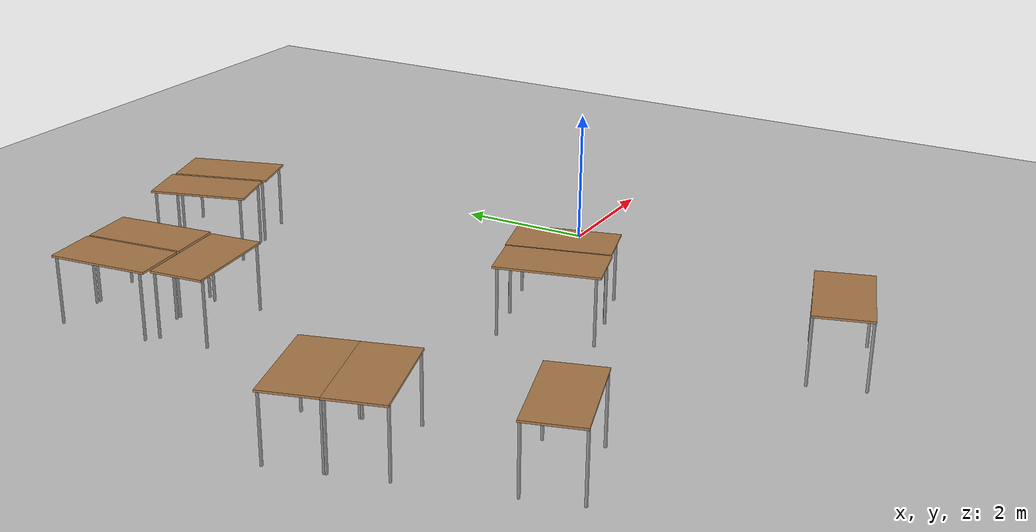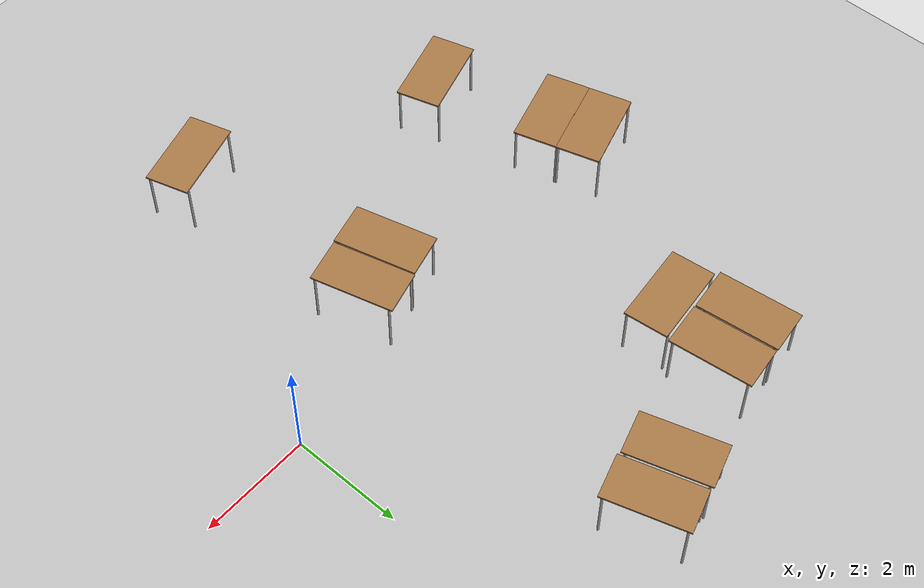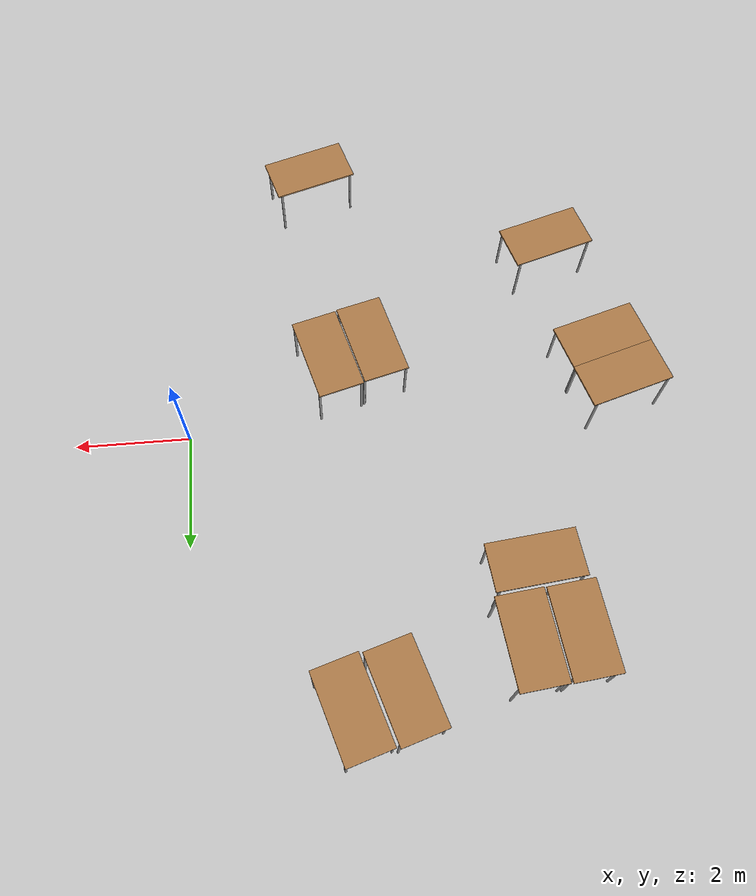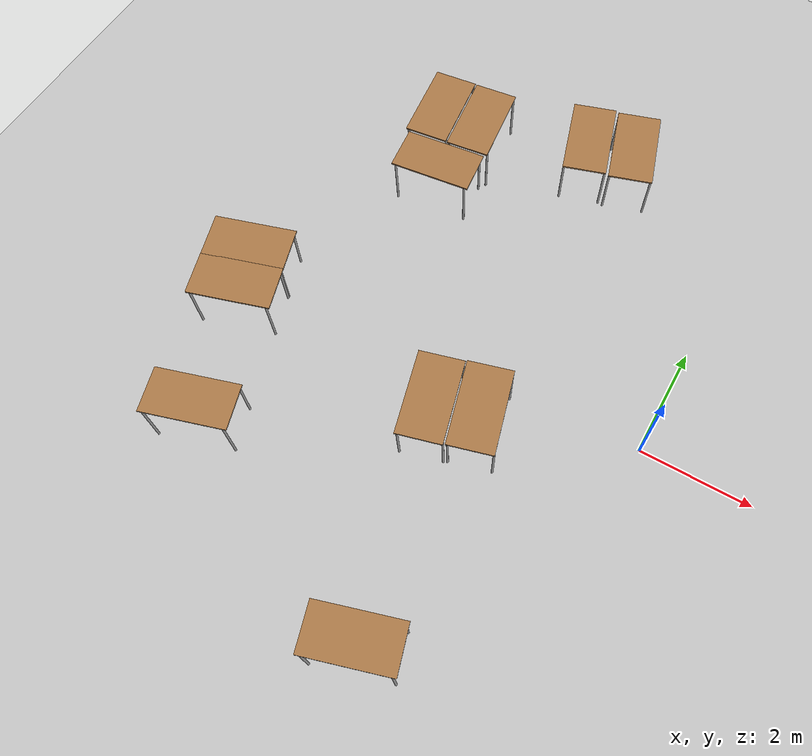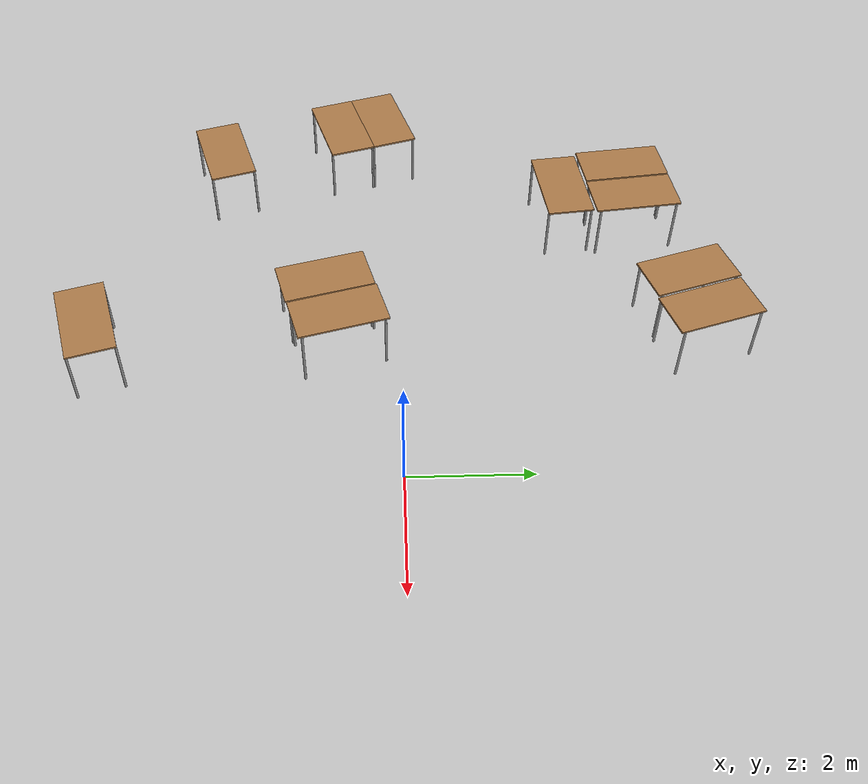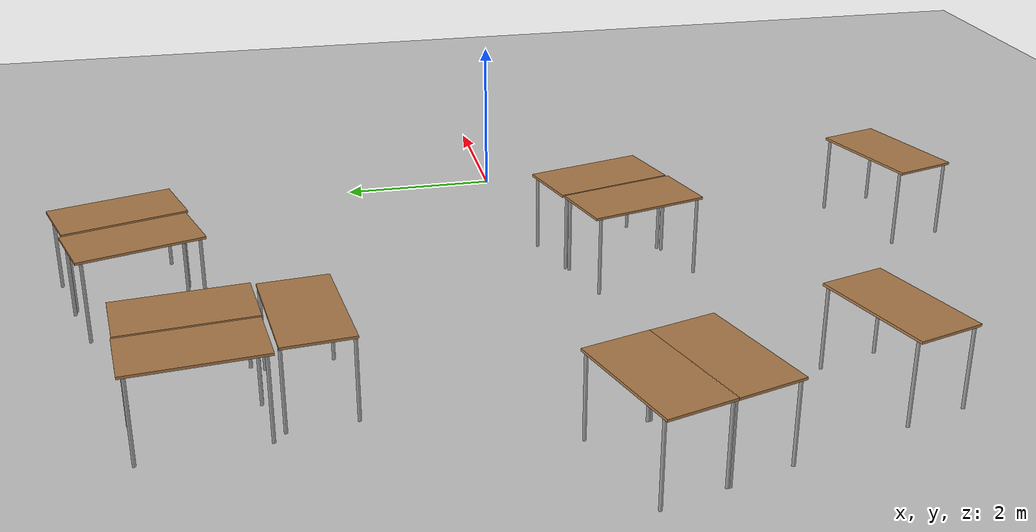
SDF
<sdf version="1.6">
 <world name="default">
  <model name="ground_plane">
   <static>1</static>
   <link name="link">
    <collision name="collision">
     <geometry><plane><normal>0 0 1</normal><size>100 100</size></plane></geometry>
     <surface><friction><ode><mu>100</mu><mu2>50</mu2></ode></friction></surface>
    </collision>
    <visual name="visual">
     <cast_shadows>0</cast_shadows>
     <geometry><plane><normal>0 0 1</normal><size>100 100</size></plane></geometry>
     <material>
      <script><uri>file://media/materials/scripts/gazebo.material</uri><name>Gazebo/Grey</name></script>
     </material>
    </visual>
   </link>
  </model>
  <light name="sun" type="directional">
   <pose>0 0 10 0 -0 0</pose>
   <diffuse>0.8 0.8 0.8 1</diffuse>
   <specular>0.2 0.2 0.2 1</specular>
   <attenuation>
    <range>1000</range>
    <constant>0.9</constant>
    <linear>0.01</linear>
    <quadratic>0.001</quadratic>
   </attenuation>
   <direction>-0.5 0.1 -0.9</direction>
  </light>
  <gravity>0 0 -9.8</gravity>
  <magnetic_field>6e-06 2.3e-05 -4.2e-05</magnetic_field>
  <atmosphere type="adiabatic"/>
  <physics name="default_physics" default="0" type="ode">
   <max_step_size>0.001</max_step_size>
   <real_time_factor>1</real_time_factor>
   <real_time_update_rate>1000</real_time_update_rate>
  </physics>
  <scene><ambient>0.4 0.4 0.4 1</ambient><background>0.7 0.7 0.7 1</background><shadows>1</shadows></scene>
  <audio><device>default</device></audio>
  <spherical_coordinates>
   <surface_model>EARTH_WGS84</surface_model>
   <latitude_deg>0</latitude_deg>
   <longitude_deg>0</longitude_deg>
   <elevation>0</elevation>
   <heading_deg>0</heading_deg>
  </spherical_coordinates>
  <model name="table">
   <static>1</static>
   <link name="link">
    <collision name="surface">
     <pose>0 0 1 0 -0 0</pose>
     <geometry><box><size>1.5 0.8 0.03</size></box></geometry>
     <surface><friction><ode><mu>0.6</mu><mu2>0.6</mu2></ode></friction></surface>
    </collision>
    <visual name="visual1">
     <pose>0 0 1 0 -0 0</pose>
     <geometry><box><size>1.5 0.8 0.03</size></box></geometry>
     <material>
      <script><uri>file://media/materials/scripts/gazebo.material</uri><name>Gazebo/Wood</name></script>
     </material>
    </visual>
    <collision name="front_left_leg">
     <pose>0.68 0.38 0.5 0 -0 0</pose>
     <geometry><cylinder><radius>0.02</radius><length>1</length></cylinder></geometry>
    </collision>
    <visual name="front_left_leg">
     <pose>0.68 0.38 0.5 0 -0 0</pose>
     <geometry><cylinder><radius>0.02</radius><length>1</length></cylinder></geometry>
     <material>
      <script><uri>file://media/materials/scripts/gazebo.material</uri><name>Gazebo/Grey</name></script>
     </material>
    </visual>
    <collision name="front_right_leg">
     <pose>0.68 -0.38 0.5 0 -0 0</pose>
     <geometry><cylinder><radius>0.02</radius><length>1</length></cylinder></geometry>
    </collision>
    <visual name="front_right_leg">
     <pose>0.68 -0.38 0.5 0 -0 0</pose>
     <geometry><cylinder><radius>0.02</radius><length>1</length></cylinder></geometry>
     <material>
      <script><uri>file://media/materials/scripts/gazebo.material</uri><name>Gazebo/Grey</name></script>
     </material>
    </visual>
    <collision name="back_right_leg">
     <pose>-0.68 -0.38 0.5 0 -0 0</pose>
     <geometry><cylinder><radius>0.02</radius><length>1</length></cylinder></geometry>
    </collision>
    <visual name="back_right_leg">
     <pose>-0.68 -0.38 0.5 0 -0 0</pose>
     <geometry><cylinder><radius>0.02</radius><length>1</length></cylinder></geometry>
     <material>
      <script><uri>file://media/materials/scripts/gazebo.material</uri><name>Gazebo/Grey</name></script>
     </material>
    </visual>
    <collision name="back_left_leg">
     <pose>-0.68 0.38 0.5 0 -0 0</pose>
     <geometry><cylinder><radius>0.02</radius><length>1</length></cylinder></geometry>
    </collision>
    <visual name="back_left_leg">
     <pose>-0.68 0.38 0.5 0 -0 0</pose>
     <geometry><cylinder><radius>0.02</radius><length>1</length></cylinder></geometry>
     <material>
      <script><uri>file://media/materials/scripts/gazebo.material</uri><name>Gazebo/Grey</name></script>
     </material>
    </visual>
   </link>
   <pose>-7.55875 -0.230435 -0 0 -0 0.292151</pose>
  </model>
  <model name="table_clone">
   <static>1</static>
   <link name="link">
    <collision name="surface">
     <pose>0 0 1 0 -0 0</pose>
     <geometry><box><size>1.5 0.8 0.03</size></box></geometry>
     <surface><friction><ode><mu>0.6</mu><mu2>0.6</mu2></ode></friction></surface>
    </collision>
    <visual name="visual1">
     <pose>0 0 1 0 -0 0</pose>
     <geometry><box><size>1.5 0.8 0.03</size></box></geometry>
     <material>
      <script><uri>file://media/materials/scripts/gazebo.material</uri><name>Gazebo/Wood</name></script>
     </material>
    </visual>
    <collision name="front_left_leg">
     <pose>0.68 0.38 0.5 0 -0 0</pose>
     <geometry><cylinder><radius>0.02</radius><length>1</length></cylinder></geometry>
    </collision>
    <visual name="front_left_leg">
     <pose>0.68 0.38 0.5 0 -0 0</pose>
     <geometry><cylinder><radius>0.02</radius><length>1</length></cylinder></geometry>
     <material>
      <script><uri>file://media/materials/scripts/gazebo.material</uri><name>Gazebo/Grey</name></script>
     </material>
    </visual>
    <collision name="front_right_leg">
     <pose>0.68 -0.38 0.5 0 -0 0</pose>
     <geometry><cylinder><radius>0.02</radius><length>1</length></cylinder></geometry>
    </collision>
    <visual name="front_right_leg">
     <pose>0.68 -0.38 0.5 0 -0 0</pose>
     <geometry><cylinder><radius>0.02</radius><length>1</length></cylinder></geometry>
     <material>
      <script><uri>file://media/materials/scripts/gazebo.material</uri><name>Gazebo/Grey</name></script>
     </material>
    </visual>
    <collision name="back_right_leg">
     <pose>-0.68 -0.38 0.5 0 -0 0</pose>
     <geometry><cylinder><radius>0.02</radius><length>1</length></cylinder></geometry>
    </collision>
    <visual name="back_right_leg">
     <pose>-0.68 -0.38 0.5 0 -0 0</pose>
     <geometry><cylinder><radius>0.02</radius><length>1</length></cylinder></geometry>
     <material>
      <script><uri>file://media/materials/scripts/gazebo.material</uri><name>Gazebo/Grey</name></script>
     </material>
    </visual>
    <collision name="back_left_leg">
     <pose>-0.68 0.38 0.5 0 -0 0</pose>
     <geometry><cylinder><radius>0.02</radius><length>1</length></cylinder></geometry>
    </collision>
    <visual name="back_left_leg">
     <pose>-0.68 0.38 0.5 0 -0 0</pose>
     <geometry><cylinder><radius>0.02</radius><length>1</length></cylinder></geometry>
     <material>
      <script><uri>file://media/materials/scripts/gazebo.material</uri><name>Gazebo/Grey</name></script>
     </material>
    </visual>
   </link>
   <pose>-6.13179 4.09391 0 0 0 -1.45434</pose>
  </model>
  <model name="table_clone_clone">
   <static>1</static>
   <link name="link">
    <collision name="surface">
     <pose>0 0 1 0 -0 0</pose>
     <geometry><box><size>1.5 0.8 0.03</size></box></geometry>
     <surface><friction><ode><mu>0.6</mu><mu2>0.6</mu2></ode></friction></surface>
    </collision>
    <visual name="visual1">
     <pose>0 0 1 0 -0 0</pose>
     <geometry><box><size>1.5 0.8 0.03</size></box></geometry>
     <material>
      <script><uri>file://media/materials/scripts/gazebo.material</uri><name>Gazebo/Wood</name></script>
     </material>
    </visual>
    <collision name="front_left_leg">
     <pose>0.68 0.38 0.5 0 -0 0</pose>
     <geometry><cylinder><radius>0.02</radius><length>1</length></cylinder></geometry>
    </collision>
    <visual name="front_left_leg">
     <pose>0.68 0.38 0.5 0 -0 0</pose>
     <geometry><cylinder><radius>0.02</radius><length>1</length></cylinder></geometry>
     <material>
      <script><uri>file://media/materials/scripts/gazebo.material</uri><name>Gazebo/Grey</name></script>
     </material>
    </visual>
    <collision name="front_right_leg">
     <pose>0.68 -0.38 0.5 0 -0 0</pose>
     <geometry><cylinder><radius>0.02</radius><length>1</length></cylinder></geometry>
    </collision>
    <visual name="front_right_leg">
     <pose>0.68 -0.38 0.5 0 -0 0</pose>
     <geometry><cylinder><radius>0.02</radius><length>1</length></cylinder></geometry>
     <material>
      <script><uri>file://media/materials/scripts/gazebo.material</uri><name>Gazebo/Grey</name></script>
     </material>
    </visual>
    <collision name="back_right_leg">
     <pose>-0.68 -0.38 0.5 0 -0 0</pose>
     <geometry><cylinder><radius>0.02</radius><length>1</length></cylinder></geometry>
    </collision>
    <visual name="back_right_leg">
     <pose>-0.68 -0.38 0.5 0 -0 0</pose>
     <geometry><cylinder><radius>0.02</radius><length>1</length></cylinder></geometry>
     <material>
      <script><uri>file://media/materials/scripts/gazebo.material</uri><name>Gazebo/Grey</name></script>
     </material>
    </visual>
    <collision name="back_left_leg">
     <pose>-0.68 0.38 0.5 0 -0 0</pose>
     <geometry><cylinder><radius>0.02</radius><length>1</length></cylinder></geometry>
    </collision>
    <visual name="back_left_leg">
     <pose>-0.68 0.38 0.5 0 -0 0</pose>
     <geometry><cylinder><radius>0.02</radius><length>1</length></cylinder></geometry>
     <material>
      <script><uri>file://media/materials/scripts/gazebo.material</uri><name>Gazebo/Grey</name></script>
     </material>
    </visual>
   </link>
   <pose>-5.30288 4.18149 0 0 0 -1.45434</pose>
  </model>
  <model name="table_clone_clone_clone">
   <static>1</static>
   <link name="link">
    <collision name="surface">
     <pose>0 0 1 0 -0 0</pose>
     <geometry><box><size>1.5 0.8 0.03</size></box></geometry>
     <surface><friction><ode><mu>0.6</mu><mu2>0.6</mu2></ode></friction></surface>
    </collision>
    <visual name="visual1">
     <pose>0 0 1 0 -0 0</pose>
     <geometry><box><size>1.5 0.8 0.03</size></box></geometry>
     <material>
      <script><uri>file://media/materials/scripts/gazebo.material</uri><name>Gazebo/Wood</name></script>
     </material>
    </visual>
    <collision name="front_left_leg">
     <pose>0.68 0.38 0.5 0 -0 0</pose>
     <geometry><cylinder><radius>0.02</radius><length>1</length></cylinder></geometry>
    </collision>
    <visual name="front_left_leg">
     <pose>0.68 0.38 0.5 0 -0 0</pose>
     <geometry><cylinder><radius>0.02</radius><length>1</length></cylinder></geometry>
     <material>
      <script><uri>file://media/materials/scripts/gazebo.material</uri><name>Gazebo/Grey</name></script>
     </material>
    </visual>
    <collision name="front_right_leg">
     <pose>0.68 -0.38 0.5 0 -0 0</pose>
     <geometry><cylinder><radius>0.02</radius><length>1</length></cylinder></geometry>
    </collision>
    <visual name="front_right_leg">
     <pose>0.68 -0.38 0.5 0 -0 0</pose>
     <geometry><cylinder><radius>0.02</radius><length>1</length></cylinder></geometry>
     <material>
      <script><uri>file://media/materials/scripts/gazebo.material</uri><name>Gazebo/Grey</name></script>
     </material>
    </visual>
    <collision name="back_right_leg">
     <pose>-0.68 -0.38 0.5 0 -0 0</pose>
     <geometry><cylinder><radius>0.02</radius><length>1</length></cylinder></geometry>
    </collision>
    <visual name="back_right_leg">
     <pose>-0.68 -0.38 0.5 0 -0 0</pose>
     <geometry><cylinder><radius>0.02</radius><length>1</length></cylinder></geometry>
     <material>
      <script><uri>file://media/materials/scripts/gazebo.material</uri><name>Gazebo/Grey</name></script>
     </material>
    </visual>
    <collision name="back_left_leg">
     <pose>-0.68 0.38 0.5 0 -0 0</pose>
     <geometry><cylinder><radius>0.02</radius><length>1</length></cylinder></geometry>
    </collision>
    <visual name="back_left_leg">
     <pose>-0.68 0.38 0.5 0 -0 0</pose>
     <geometry><cylinder><radius>0.02</radius><length>1</length></cylinder></geometry>
     <material>
      <script><uri>file://media/materials/scripts/gazebo.material</uri><name>Gazebo/Grey</name></script>
     </material>
    </visual>
   </link>
   <pose>-3.32836 4.77328 0 0 0 -1.26948</pose>
  </model>
  <model name="table_clone_clone_clone_clone">
   <static>1</static>
   <link name="link">
    <collision name="surface">
     <pose>0 0 1 0 -0 0</pose>
     <geometry><box><size>1.5 0.8 0.03</size></box></geometry>
     <surface><friction><ode><mu>0.6</mu><mu2>0.6</mu2></ode></friction></surface>
    </collision>
    <visual name="visual1">
     <pose>0 0 1 0 -0 0</pose>
     <geometry><box><size>1.5 0.8 0.03</size></box></geometry>
     <material>
      <script><uri>file://media/materials/scripts/gazebo.material</uri><name>Gazebo/Wood</name></script>
     </material>
    </visual>
    <collision name="front_left_leg">
     <pose>0.68 0.38 0.5 0 -0 0</pose>
     <geometry><cylinder><radius>0.02</radius><length>1</length></cylinder></geometry>
    </collision>
    <visual name="front_left_leg">
     <pose>0.68 0.38 0.5 0 -0 0</pose>
     <geometry><cylinder><radius>0.02</radius><length>1</length></cylinder></geometry>
     <material>
      <script><uri>file://media/materials/scripts/gazebo.material</uri><name>Gazebo/Grey</name></script>
     </material>
    </visual>
    <collision name="front_right_leg">
     <pose>0.68 -0.38 0.5 0 -0 0</pose>
     <geometry><cylinder><radius>0.02</radius><length>1</length></cylinder></geometry>
    </collision>
    <visual name="front_right_leg">
     <pose>0.68 -0.38 0.5 0 -0 0</pose>
     <geometry><cylinder><radius>0.02</radius><length>1</length></cylinder></geometry>
     <material>
      <script><uri>file://media/materials/scripts/gazebo.material</uri><name>Gazebo/Grey</name></script>
     </material>
    </visual>
    <collision name="back_right_leg">
     <pose>-0.68 -0.38 0.5 0 -0 0</pose>
     <geometry><cylinder><radius>0.02</radius><length>1</length></cylinder></geometry>
    </collision>
    <visual name="back_right_leg">
     <pose>-0.68 -0.38 0.5 0 -0 0</pose>
     <geometry><cylinder><radius>0.02</radius><length>1</length></cylinder></geometry>
     <material>
      <script><uri>file://media/materials/scripts/gazebo.material</uri><name>Gazebo/Grey</name></script>
     </material>
    </visual>
    <collision name="back_left_leg">
     <pose>-0.68 0.38 0.5 0 -0 0</pose>
     <geometry><cylinder><radius>0.02</radius><length>1</length></cylinder></geometry>
    </collision>
    <visual name="back_left_leg">
     <pose>-0.68 0.38 0.5 0 -0 0</pose>
     <geometry><cylinder><radius>0.02</radius><length>1</length></cylinder></geometry>
     <material>
      <script><uri>file://media/materials/scripts/gazebo.material</uri><name>Gazebo/Grey</name></script>
     </material>
    </visual>
   </link>
   <pose>-2.50531 4.98852 0 0 0 -1.26948</pose>
  </model>
  <model name="table_clone_0">
   <static>1</static>
   <link name="link">
    <collision name="surface">
     <pose>0 0 1 0 -0 0</pose>
     <geometry><box><size>1.5 0.8 0.03</size></box></geometry>
     <surface><friction><ode><mu>0.6</mu><mu2>0.6</mu2></ode></friction></surface>
    </collision>
    <visual name="visual1">
     <pose>0 0 1 0 -0 0</pose>
     <geometry><box><size>1.5 0.8 0.03</size></box></geometry>
     <material>
      <script><uri>file://media/materials/scripts/gazebo.material</uri><name>Gazebo/Wood</name></script>
     </material>
    </visual>
    <collision name="front_left_leg">
     <pose>0.68 0.38 0.5 0 -0 0</pose>
     <geometry><cylinder><radius>0.02</radius><length>1</length></cylinder></geometry>
    </collision>
    <visual name="front_left_leg">
     <pose>0.68 0.38 0.5 0 -0 0</pose>
     <geometry><cylinder><radius>0.02</radius><length>1</length></cylinder></geometry>
     <material>
      <script><uri>file://media/materials/scripts/gazebo.material</uri><name>Gazebo/Grey</name></script>
     </material>
    </visual>
    <collision name="front_right_leg">
     <pose>0.68 -0.38 0.5 0 -0 0</pose>
     <geometry><cylinder><radius>0.02</radius><length>1</length></cylinder></geometry>
    </collision>
    <visual name="front_right_leg">
     <pose>0.68 -0.38 0.5 0 -0 0</pose>
     <geometry><cylinder><radius>0.02</radius><length>1</length></cylinder></geometry>
     <material>
      <script><uri>file://media/materials/scripts/gazebo.material</uri><name>Gazebo/Grey</name></script>
     </material>
    </visual>
    <collision name="back_right_leg">
     <pose>-0.68 -0.38 0.5 0 -0 0</pose>
     <geometry><cylinder><radius>0.02</radius><length>1</length></cylinder></geometry>
    </collision>
    <visual name="back_right_leg">
     <pose>-0.68 -0.38 0.5 0 -0 0</pose>
     <geometry><cylinder><radius>0.02</radius><length>1</length></cylinder></geometry>
     <material>
      <script><uri>file://media/materials/scripts/gazebo.material</uri><name>Gazebo/Grey</name></script>
     </material>
    </visual>
    <collision name="back_left_leg">
     <pose>-0.68 0.38 0.5 0 -0 0</pose>
     <geometry><cylinder><radius>0.02</radius><length>1</length></cylinder></geometry>
    </collision>
    <visual name="back_left_leg">
     <pose>-0.68 0.38 0.5 0 -0 0</pose>
     <geometry><cylinder><radius>0.02</radius><length>1</length></cylinder></geometry>
     <material>
      <script><uri>file://media/materials/scripts/gazebo.material</uri><name>Gazebo/Grey</name></script>
     </material>
    </visual>
   </link>
   <pose>-7.33308 -0.9878 0 0 -0 0.292151</pose>
  </model>
  <model name="table_clone_0_clone">
   <static>1</static>
   <link name="link">
    <collision name="surface">
     <pose>0 0 1 0 -0 0</pose>
     <geometry><box><size>1.5 0.8 0.03</size></box></geometry>
     <surface><friction><ode><mu>0.6</mu><mu2>0.6</mu2></ode></friction></surface>
    </collision>
    <visual name="visual1">
     <pose>0 0 1 0 -0 0</pose>
     <geometry><box><size>1.5 0.8 0.03</size></box></geometry>
     <material>
      <script><uri>file://media/materials/scripts/gazebo.material</uri><name>Gazebo/Wood</name></script>
     </material>
    </visual>
    <collision name="front_left_leg">
     <pose>0.68 0.38 0.5 0 -0 0</pose>
     <geometry><cylinder><radius>0.02</radius><length>1</length></cylinder></geometry>
    </collision>
    <visual name="front_left_leg">
     <pose>0.68 0.38 0.5 0 -0 0</pose>
     <geometry><cylinder><radius>0.02</radius><length>1</length></cylinder></geometry>
     <material>
      <script><uri>file://media/materials/scripts/gazebo.material</uri><name>Gazebo/Grey</name></script>
     </material>
    </visual>
    <collision name="front_right_leg">
     <pose>0.68 -0.38 0.5 0 -0 0</pose>
     <geometry><cylinder><radius>0.02</radius><length>1</length></cylinder></geometry>
    </collision>
    <visual name="front_right_leg">
     <pose>0.68 -0.38 0.5 0 -0 0</pose>
     <geometry><cylinder><radius>0.02</radius><length>1</length></cylinder></geometry>
     <material>
      <script><uri>file://media/materials/scripts/gazebo.material</uri><name>Gazebo/Grey</name></script>
     </material>
    </visual>
    <collision name="back_right_leg">
     <pose>-0.68 -0.38 0.5 0 -0 0</pose>
     <geometry><cylinder><radius>0.02</radius><length>1</length></cylinder></geometry>
    </collision>
    <visual name="back_right_leg">
     <pose>-0.68 -0.38 0.5 0 -0 0</pose>
     <geometry><cylinder><radius>0.02</radius><length>1</length></cylinder></geometry>
     <material>
      <script><uri>file://media/materials/scripts/gazebo.material</uri><name>Gazebo/Grey</name></script>
     </material>
    </visual>
    <collision name="back_left_leg">
     <pose>-0.68 0.38 0.5 0 -0 0</pose>
     <geometry><cylinder><radius>0.02</radius><length>1</length></cylinder></geometry>
    </collision>
    <visual name="back_left_leg">
     <pose>-0.68 0.38 0.5 0 -0 0</pose>
     <geometry><cylinder><radius>0.02</radius><length>1</length></cylinder></geometry>
     <material>
      <script><uri>file://media/materials/scripts/gazebo.material</uri><name>Gazebo/Grey</name></script>
     </material>
    </visual>
   </link>
   <pose>-6.6814 -3.12807 0 0 -0 0.292151</pose>
  </model>
  <model name="table_clone_0_clone_clone">
   <static>1</static>
   <link name="link">
    <collision name="surface">
     <pose>0 0 1 0 -0 0</pose>
     <geometry><box><size>1.5 0.8 0.03</size></box></geometry>
     <surface><friction><ode><mu>0.6</mu><mu2>0.6</mu2></ode></friction></surface>
    </collision>
    <visual name="visual1">
     <pose>0 0 1 0 -0 0</pose>
     <geometry><box><size>1.5 0.8 0.03</size></box></geometry>
     <material>
      <script><uri>file://media/materials/scripts/gazebo.material</uri><name>Gazebo/Wood</name></script>
     </material>
    </visual>
    <collision name="front_left_leg">
     <pose>0.68 0.38 0.5 0 -0 0</pose>
     <geometry><cylinder><radius>0.02</radius><length>1</length></cylinder></geometry>
    </collision>
    <visual name="front_left_leg">
     <pose>0.68 0.38 0.5 0 -0 0</pose>
     <geometry><cylinder><radius>0.02</radius><length>1</length></cylinder></geometry>
     <material>
      <script><uri>file://media/materials/scripts/gazebo.material</uri><name>Gazebo/Grey</name></script>
     </material>
    </visual>
    <collision name="front_right_leg">
     <pose>0.68 -0.38 0.5 0 -0 0</pose>
     <geometry><cylinder><radius>0.02</radius><length>1</length></cylinder></geometry>
    </collision>
    <visual name="front_right_leg">
     <pose>0.68 -0.38 0.5 0 -0 0</pose>
     <geometry><cylinder><radius>0.02</radius><length>1</length></cylinder></geometry>
     <material>
      <script><uri>file://media/materials/scripts/gazebo.material</uri><name>Gazebo/Grey</name></script>
     </material>
    </visual>
    <collision name="back_right_leg">
     <pose>-0.68 -0.38 0.5 0 -0 0</pose>
     <geometry><cylinder><radius>0.02</radius><length>1</length></cylinder></geometry>
    </collision>
    <visual name="back_right_leg">
     <pose>-0.68 -0.38 0.5 0 -0 0</pose>
     <geometry><cylinder><radius>0.02</radius><length>1</length></cylinder></geometry>
     <material>
      <script><uri>file://media/materials/scripts/gazebo.material</uri><name>Gazebo/Grey</name></script>
     </material>
    </visual>
    <collision name="back_left_leg">
     <pose>-0.68 0.38 0.5 0 -0 0</pose>
     <geometry><cylinder><radius>0.02</radius><length>1</length></cylinder></geometry>
    </collision>
    <visual name="back_left_leg">
     <pose>-0.68 0.38 0.5 0 -0 0</pose>
     <geometry><cylinder><radius>0.02</radius><length>1</length></cylinder></geometry>
     <material>
      <script><uri>file://media/materials/scripts/gazebo.material</uri><name>Gazebo/Grey</name></script>
     </material>
    </visual>
   </link>
   <pose>-2.5311 -0.98817 0 0 0 -1.30315</pose>
  </model>
  <model name="table_clone_0_clone_clone_clone">
   <static>1</static>
   <link name="link">
    <collision name="surface">
     <pose>0 0 1 0 -0 0</pose>
     <geometry><box><size>1.5 0.8 0.03</size></box></geometry>
     <surface><friction><ode><mu>0.6</mu><mu2>0.6</mu2></ode></friction></surface>
    </collision>
    <visual name="visual1">
     <pose>0 0 1 0 -0 0</pose>
     <geometry><box><size>1.5 0.8 0.03</size></box></geometry>
     <material>
      <script><uri>file://media/materials/scripts/gazebo.material</uri><name>Gazebo/Wood</name></script>
     </material>
    </visual>
    <collision name="front_left_leg">
     <pose>0.68 0.38 0.5 0 -0 0</pose>
     <geometry><cylinder><radius>0.02</radius><length>1</length></cylinder></geometry>
    </collision>
    <visual name="front_left_leg">
     <pose>0.68 0.38 0.5 0 -0 0</pose>
     <geometry><cylinder><radius>0.02</radius><length>1</length></cylinder></geometry>
     <material>
      <script><uri>file://media/materials/scripts/gazebo.material</uri><name>Gazebo/Grey</name></script>
     </material>
    </visual>
    <collision name="front_right_leg">
     <pose>0.68 -0.38 0.5 0 -0 0</pose>
     <geometry><cylinder><radius>0.02</radius><length>1</length></cylinder></geometry>
    </collision>
    <visual name="front_right_leg">
     <pose>0.68 -0.38 0.5 0 -0 0</pose>
     <geometry><cylinder><radius>0.02</radius><length>1</length></cylinder></geometry>
     <material>
      <script><uri>file://media/materials/scripts/gazebo.material</uri><name>Gazebo/Grey</name></script>
     </material>
    </visual>
    <collision name="back_right_leg">
     <pose>-0.68 -0.38 0.5 0 -0 0</pose>
     <geometry><cylinder><radius>0.02</radius><length>1</length></cylinder></geometry>
    </collision>
    <visual name="back_right_leg">
     <pose>-0.68 -0.38 0.5 0 -0 0</pose>
     <geometry><cylinder><radius>0.02</radius><length>1</length></cylinder></geometry>
     <material>
      <script><uri>file://media/materials/scripts/gazebo.material</uri><name>Gazebo/Grey</name></script>
     </material>
    </visual>
    <collision name="back_left_leg">
     <pose>-0.68 0.38 0.5 0 -0 0</pose>
     <geometry><cylinder><radius>0.02</radius><length>1</length></cylinder></geometry>
    </collision>
    <visual name="back_left_leg">
     <pose>-0.68 0.38 0.5 0 -0 0</pose>
     <geometry><cylinder><radius>0.02</radius><length>1</length></cylinder></geometry>
     <material>
      <script><uri>file://media/materials/scripts/gazebo.material</uri><name>Gazebo/Grey</name></script>
     </material>
    </visual>
   </link>
   <pose>-3.32392 -1.22048 0 0 -0 1.83179</pose>
  </model>
  <model name="table_clone_0_clone_clone_0">
   <static>1</static>
   <link name="link">
    <collision name="surface">
     <pose>0 0 1 0 -0 0</pose>
     <geometry><box><size>1.5 0.8 0.03</size></box></geometry>
     <surface><friction><ode><mu>0.6</mu><mu2>0.6</mu2></ode></friction></surface>
    </collision>
    <visual name="visual1">
     <pose>0 0 1 0 -0 0</pose>
     <geometry><box><size>1.5 0.8 0.03</size></box></geometry>
     <material>
      <script><uri>file://media/materials/scripts/gazebo.material</uri><name>Gazebo/Wood</name></script>
     </material>
    </visual>
    <collision name="front_left_leg">
     <pose>0.68 0.38 0.5 0 -0 0</pose>
     <geometry><cylinder><radius>0.02</radius><length>1</length></cylinder></geometry>
    </collision>
    <visual name="front_left_leg">
     <pose>0.68 0.38 0.5 0 -0 0</pose>
     <geometry><cylinder><radius>0.02</radius><length>1</length></cylinder></geometry>
     <material>
      <script><uri>file://media/materials/scripts/gazebo.material</uri><name>Gazebo/Grey</name></script>
     </material>
    </visual>
    <collision name="front_right_leg">
     <pose>0.68 -0.38 0.5 0 -0 0</pose>
     <geometry><cylinder><radius>0.02</radius><length>1</length></cylinder></geometry>
    </collision>
    <visual name="front_right_leg">
     <pose>0.68 -0.38 0.5 0 -0 0</pose>
     <geometry><cylinder><radius>0.02</radius><length>1</length></cylinder></geometry>
     <material>
      <script><uri>file://media/materials/scripts/gazebo.material</uri><name>Gazebo/Grey</name></script>
     </material>
    </visual>
    <collision name="back_right_leg">
     <pose>-0.68 -0.38 0.5 0 -0 0</pose>
     <geometry><cylinder><radius>0.02</radius><length>1</length></cylinder></geometry>
    </collision>
    <visual name="back_right_leg">
     <pose>-0.68 -0.38 0.5 0 -0 0</pose>
     <geometry><cylinder><radius>0.02</radius><length>1</length></cylinder></geometry>
     <material>
      <script><uri>file://media/materials/scripts/gazebo.material</uri><name>Gazebo/Grey</name></script>
     </material>
    </visual>
    <collision name="back_left_leg">
     <pose>-0.68 0.38 0.5 0 -0 0</pose>
     <geometry><cylinder><radius>0.02</radius><length>1</length></cylinder></geometry>
    </collision>
    <visual name="back_left_leg">
     <pose>-0.68 0.38 0.5 0 -0 0</pose>
     <geometry><cylinder><radius>0.02</radius><length>1</length></cylinder></geometry>
     <material>
      <script><uri>file://media/materials/scripts/gazebo.material</uri><name>Gazebo/Grey</name></script>
     </material>
    </visual>
   </link>
   <pose>-2.4383 -4.98768 0 0 -0 0.292151</pose>
  </model>
  <model name="table_clone_0_clone_clone_1">
   <static>1</static>
   <link name="link">
    <collision name="surface">
     <pose>0 0 1 0 -0 0</pose>
     <geometry><box><size>1.5 0.8 0.03</size></box></geometry>
     <surface><friction><ode><mu>0.6</mu><mu2>0.6</mu2></ode></friction></surface>
    </collision>
    <visual name="visual1">
     <pose>0 0 1 0 -0 0</pose>
     <geometry><box><size>1.5 0.8 0.03</size></box></geometry>
     <material>
      <script><uri>file://media/materials/scripts/gazebo.material</uri><name>Gazebo/Wood</name></script>
     </material>
    </visual>
    <collision name="front_left_leg">
     <pose>0.68 0.38 0.5 0 -0 0</pose>
     <geometry><cylinder><radius>0.02</radius><length>1</length></cylinder></geometry>
    </collision>
    <visual name="front_left_leg">
     <pose>0.68 0.38 0.5 0 -0 0</pose>
     <geometry><cylinder><radius>0.02</radius><length>1</length></cylinder></geometry>
     <material>
      <script><uri>file://media/materials/scripts/gazebo.material</uri><name>Gazebo/Grey</name></script>
     </material>
    </visual>
    <collision name="front_right_leg">
     <pose>0.68 -0.38 0.5 0 -0 0</pose>
     <geometry><cylinder><radius>0.02</radius><length>1</length></cylinder></geometry>
    </collision>
    <visual name="front_right_leg">
     <pose>0.68 -0.38 0.5 0 -0 0</pose>
     <geometry><cylinder><radius>0.02</radius><length>1</length></cylinder></geometry>
     <material>
      <script><uri>file://media/materials/scripts/gazebo.material</uri><name>Gazebo/Grey</name></script>
     </material>
    </visual>
    <collision name="back_right_leg">
     <pose>-0.68 -0.38 0.5 0 -0 0</pose>
     <geometry><cylinder><radius>0.02</radius><length>1</length></cylinder></geometry>
    </collision>
    <visual name="back_right_leg">
     <pose>-0.68 -0.38 0.5 0 -0 0</pose>
     <geometry><cylinder><radius>0.02</radius><length>1</length></cylinder></geometry>
     <material>
      <script><uri>file://media/materials/scripts/gazebo.material</uri><name>Gazebo/Grey</name></script>
     </material>
    </visual>
    <collision name="back_left_leg">
     <pose>-0.68 0.38 0.5 0 -0 0</pose>
     <geometry><cylinder><radius>0.02</radius><length>1</length></cylinder></geometry>
    </collision>
    <visual name="back_left_leg">
     <pose>-0.68 0.38 0.5 0 -0 0</pose>
     <geometry><cylinder><radius>0.02</radius><length>1</length></cylinder></geometry>
     <material>
      <script><uri>file://media/materials/scripts/gazebo.material</uri><name>Gazebo/Grey</name></script>
     </material>
    </visual>
   </link>
   <pose>-5.55959 2.94525 0 0 -0 0.110388</pose>
  </model>
 </world>
</sdf>
